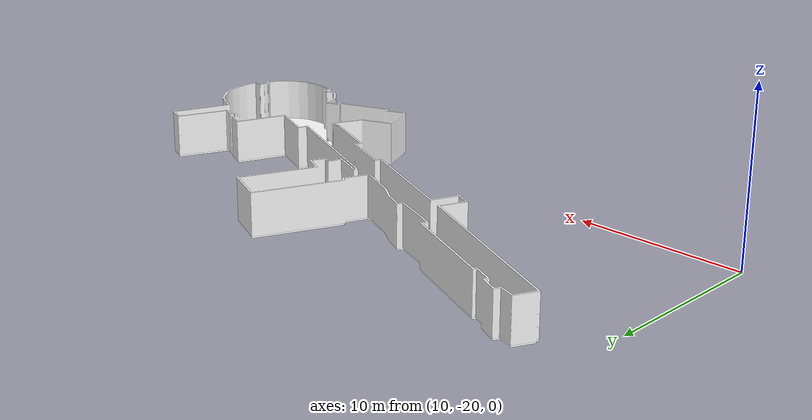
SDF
<sdf version="1.7">
  <world name="world">
    <scene>
      <ambient>0.8 0.8 0.8 1.0</ambient>
      <background>0 0 0</background>
      <grid>false</grid>
    </scene>
    <include>
      <uri>model://sun</uri>
    </include>
    <gui>
      <camera name="gui_camera">
        <pose>29.339624809930324 -33.79111934016491 10 0 0.6 1.57</pose>
      </camera>
      <plugin name="toggle_charging" filename="libtoggle_charging.so" />
      <plugin name="toggle_floors" filename="libtoggle_floors.so">
        <floor name="s502" model_name="s502_s502" />
      </plugin>
    </gui>
    <include>
      <name>s502_s502</name>
      <uri>model://s502_s502</uri>
      <pose>0 0 0.0 0 0 0</pose>
    </include>
    <rmf_charger_waypoints name="charger_waypoints">
      <rmf_vertex name="bunker_dock" x="31.497350011452838" y="-7.010705617451132" level="s502" />
      <rmf_vertex name="hunter_dock" x="32.514600955938036" y="-7.496192545122129" level="s502" />
      <rmf_vertex name="dock" x="31.755378335558508" y="-11.8047336942564" level="s502" />
    </rmf_charger_waypoints>
  </world>
</sdf>

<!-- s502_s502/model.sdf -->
<sdf version="1.7">
  <model name="s502_s502">
    <static>true</static>
    <link name="floor_1">
      <visual name="visual">
        <geometry>
          <mesh>
            <uri>model://s502_s502/meshes/floor_1.obj</uri>
          </mesh>
        </geometry>
        <material>
          <diffuse>1.0 1.0 1.0</diffuse>
          <specular>0.1 0.1 0.1</specular>
          <pbr>
            <metal>
              <metalness>0.0</metalness>
              <albedo_map>model://s502_s502/meshes/blue_linoleum.png</albedo_map>
            </metal>
          </pbr>
          <script>
            <uri>model://s502_s502/meshes/</uri>
            <name>floor_1_Diffuse</name>
          </script>
        </material>
      </visual>
      <collision name="collision">
        <geometry>
          <mesh>
            <uri>model://s502_s502/meshes/floor_1.obj</uri>
          </mesh>
        </geometry>
        <surface>
          <contact>
            <collide_bitmask>0x01</collide_bitmask>
          </contact>
        </surface>
      </collision>
    </link>
    <link name="wall_1">
      <visual name="wall_1">
        <geometry>
          <mesh>
            <uri>model://s502_s502/meshes/wall_1.obj</uri>
          </mesh>
        </geometry>
        <transparency>0.0</transparency>
        <material>
          <diffuse>1.0 1.0 1.0</diffuse>
          <specular>0.1 0.1 0.1</specular>
          <pbr>
            <metal>
              <metalness>0.0</metalness>
              <albedo_map>model://s502_s502/meshes/default.png</albedo_map>
            </metal>
          </pbr>
          <script>
            <uri>model://s502_s502/meshes/</uri>
            <name>wall_1_Diffuse</name>
          </script>
        </material>
      </visual>
      <collision name="collision">
        <geometry>
          <mesh>
            <uri>model://s502_s502/meshes/wall_1.obj</uri>
          </mesh>
        </geometry>
        <surface>
          <contact>
            <collide_bitmask>0x01</collide_bitmask>
          </contact>
        </surface>
      </collision>
      <pose>12.48305312541687 -21.99596996973153 0 0 0 0</pose>
    </link>
  </model>
</sdf>
